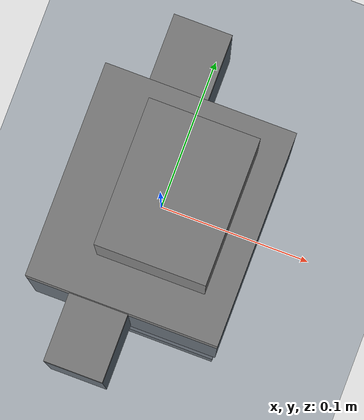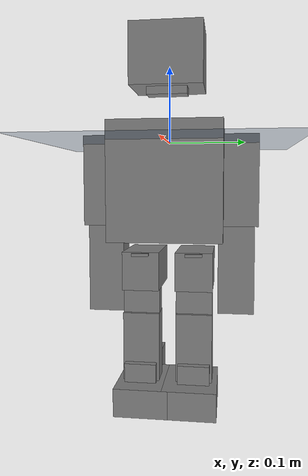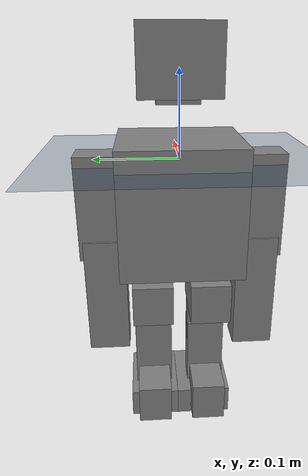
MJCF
<mujoco model="utra">
	<include file="bez1.xml" />
	<visual>
		<headlight diffuse="0.6 0.6 0.6" ambient="0.3 0.3 0.3" specular="0 0 0"/>
		<rgba haze="0.15 0.25 0.35 1"/>
		<global azimuth="160" elevation="-20"/>
	</visual>

	<asset>
		<texture type="skybox" builtin="gradient" rgb1="0.3 0.5 0.7" rgb2="0 0 0" width="512" height="3072"/>
		<texture type="2d" name="groundplane" builtin="checker" mark="edge" rgb1="0.2 0.3 0.4" rgb2="0.1 0.2 0.3"
			markrgb="0.8 0.8 0.8" width="300" height="300"/>
		<material name="groundplane" texture="groundplane" texuniform="true" texrepeat="5 5" reflectance="0.2"/>
	</asset>

	<worldbody>
		<light pos="0 0 3.5" dir="0 0 -1" directional="true"/>
		<geom name="floor" size="0 0 0.05" pos="0 0 0" type="plane" material="groundplane"/>

	</worldbody>
</mujoco>

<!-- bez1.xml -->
<mujoco model="bez1">
  <compiler angle="radian"/>
  <default>
        <default class="mx106">
            <position kp="21" forcerange="-8 8" />
            <joint damping="1.7" armature="0.025" frictionloss="0.10" />
        </default>
        <default class="mx64">
            <position kp="12.5" forcerange="-5 5" />
            <joint damping="0.66" armature="0.012" frictionloss="0.09" />
        </default>
		<default class="xm430">
            <position kp="21.1" ctrlrange="-3.141592 3.141592" forcerange="-5 5"/>
            <joint damping="1.084" armature="0.045" frictionloss="0.03"/>
        </default>

    <default class="mx28">
            <position kp="12.5" forcerange="-2.5 2.5" />
            <joint damping="0.30" armature="0.012" frictionloss="0.09" />
        </default>
    <default class="ax12">
            <position kp="12.5" forcerange="-10.5 10.5" />
            <joint damping="0.3" armature="0.012" frictionloss="0.09" />
        </default>
    </default>

  <worldbody>
    <body name="torso_2023">
      <freejoint name="root" />
      <site name="torso" />
      <site name="trunk" pos="-0.0 0 -0.12" />
      <inertial pos="0.0082498 -0.001744 -0.0522479" quat="0.708866 -0.0217531 -0.0152062 0.704844" mass="1.529" diaginertia="0.00519817 0.00432504 0.00356479"/>
      <geom name="collision" size="0.065 0.0725 0.076" pos="0 0 -0.052" type="box"/>
      <body name="left_bicep" pos="-0.0157 0.0725 0">
        <inertial pos="0 0.02579 -0.04955" quat="0.99973 0.0232243 0 0" mass="0.000213" diaginertia="0.0002824 0.000274942 2.37884e-05"/>
        <joint class="ax12" name="left_shoulder_pitch" pos="0 0 0" axis="0 -1 0" range="-1.5708 3.92699" />
        <geom name="left_bicep" size="0.02 0.02388 0.0615" pos="0 0.0225 -0.05001" type="box"/>
        <body name="left_forearm" pos="0 0 -0.1">
          <inertial pos="0 0.0245 -0.0546097" quat="0.999988 0 -0.00494983 0" mass="0.0457" diaginertia="0.00011301 0.000107 1.19901e-05"/>
          <joint class="ax12" name="left_elbow" pos="0 0 0" axis="0 1 0"  />
          <geom name="left_forearm" size="0.0175 0.0245 0.072" pos="-0.0055 0.0175 -0.06" type="box"/>
        </body>
      </body>
      <body name="right_bicep" pos="-0.0157 -0.0725 0">
        <inertial pos="0 -0.02579 -0.04955" quat="0.99973 -0.0232243 0 0" mass="0.000213" diaginertia="0.0002824 0.000274942 2.37884e-05"/>
        <joint class="ax12" name="right_shoulder_pitch" pos="0 0 0" axis="0 -1 0" range="-1.5708 3.92699" />
        <geom name="right_bicep" size="0.02 0.02388 0.0615" pos="0 -0.0225 -0.05001" type="box"/>
        <body name="right_forearm" pos="0 0 -0.1">
          <inertial pos="0 -0.0245 -0.0546097" quat="0.999988 0 0.00494983 0" mass="0.0457" diaginertia="0.00011301 0.000107 1.19901e-05"/>
          <joint class="ax12" name="right_elbow" pos="0 0 0" axis="0 1 0"  />
          <geom name="right_forearm" size="0.0175 0.0245 0.072" pos="-0.0055 -0.0175 -0.06" type="box"/>
        </body>
      </body>
      <body name="left_hip_side" pos="0.0135 0.035 -0.156">
        <inertial pos="0.0003695 0 0.01689" quat="0.5 0.5 0.5 0.5" mass="0.009364" diaginertia="5e-06 4e-06 2e-06"/>
        <joint class="mx28" name="left_hip_yaw" pos="0 0 0" axis="0 0 -1" range="-1.309 0.524" />
        <geom name="left_hip_side" size="0.02425 0.011 0.00195" pos="0 0 0.00899" type="box"/>
        <body name="left_hip_front">
          <inertial pos="-0.02093 0 -0.011313" quat="0.507623 0.492259 0.492259 0.507623" mass="0.153186" diaginertia="0.000118 0.000106061 4.09385e-05"/>
          <joint class="mx28" name="left_hip_roll" pos="0 0 0" axis="1 0 0" />
          <geom name="left_hip_front" size="0.0418735 0.024425 0.0253" pos="-0.02187 0 -0.01332" type="box"/>
          <body name="left_thigh">
            <inertial pos="0.0019422 0.0001419 -0.0469409" quat="0.994539 0 0 0.104366" mass="0.021438" diaginertia="2.54244e-05 1.55756e-05 1e-05"/>
            <joint class="mx28" name="left_hip_pitch" pos="0 0 0" axis="0 -1 0" range="-0.785398 2.35619" />
            <geom name="left_thigh" size="0.011 0.024 0.0555" pos="0 0 -0.0445" type="box"/>
            <body name="left_calve" pos="0 0 -0.089">
              <inertial pos="0 -3.259e-07 -1.50123e-05" quat="0.999829 -0.0184837 0 0" mass="0.086547" diaginertia="5.4e-05 4.6037e-05 1.8963e-05"/>
              <joint class="mx28" name="left_knee" pos="0 0 0" axis="0 -1 0" range="-2.793 0" />
              <geom name="left_calve" size="0.0159415 0.024 0.0528415" pos="0 0 -0.03385" type="box"/>
              <body name="left_ankle" pos="0 0 -0.0827">
                <inertial pos="-2.0939e-05 0 1.1313e-05" quat="0.492259 0.507623 0.507623 0.492259" mass="0.153186" diaginertia="0.000118 0.000106061 4.09385e-05"/>
                <joint class="mx28" name="left_ankle_pitch" pos="0 0 0" axis="0 -1 0" range="-0.785398 1.5708" />
                <geom name="left_ankle" size="0.0453845 0.021 0.0253" pos="-0.02014 0 0.01031" type="box"/>
                <body name="left_foot">
                  <inertial pos="-0.020939 0 0.011313" quat="0 0.707107 0 0.707107" mass="0.023216" diaginertia="2.2e-05 1.8e-05 6e-06"/>
                  <joint class="mx28" name="left_ankle_roll" pos="0 0 0" axis="1 0 0" range="-0.785398 0.785398" />
                  <geom name="left_foot" size="0.045 0.035 0.01837" pos="0.00385 -0.00401 -0.00737" type="box"/>
                  <site name="left_foot"  pos="0 0 -0.023"/>
                </body>
              </body>
            </body>
          </body>
        </body>
      </body>
      <body name="right_hip_side" pos="0.0135 -0.035 -0.156">
        <inertial pos="0.0003695 0 0.01689" quat="0.5 0.5 0.5 0.5" mass="0.009364" diaginertia="5e-06 4e-06 2e-06"/>
        <joint class="mx28" name="right_hip_yaw" pos="0 0 0" axis="0 0 1" range="-1.309 0.524" />
        <geom name="right_hip_side" size="0.02425 0.011 0.00195" pos="0 0 0.00899" type="box"/>
        <body name="right_hip_front">
          <inertial pos="-0.02093 0 -0.011313" quat="0.507623 0.492259 0.492259 0.507623" mass="0.153186" diaginertia="0.000118 0.000106061 4.09385e-05"/>
          <joint class="mx28" name="right_hip_roll" pos="0 0 0" axis="-1 0 0" range="-0.785398 1.5708" />
          <geom name="right_hip_front" size="0.0418735 0.024425 0.0253" pos="-0.02187 0 -0.01332" type="box"/>
          <body name="right_thigh">
            <inertial pos="0.0019422 -0.0001419 -0.0469409" quat="0.994539 0 0 -0.104366" mass="0.021438" diaginertia="2.54244e-05 1.55756e-05 1e-05"/>
            <joint class="mx28" name="right_hip_pitch" pos="0 0 0" axis="0 -1 0" range="-0.785398 2.35619" />
            <geom name="right_thigh" size="0.011 0.024 0.0555" pos="0 0 -0.0445" type="box"/>
            <body name="right_calve" pos="0 0 -0.089">
              <inertial pos="0 3.259e-07 -1.50123e-05" quat="0.999829 -0.0184837 0 0" mass="0.086547" diaginertia="5.4e-05 4.6037e-05 1.8963e-05"/>
              <joint class="mx28" name="right_knee" pos="0 0 0" axis="0 -1 0" range="-2.793 0" />
              <geom name="right_calve" size="0.0159415 0.024 0.0528415" pos="0 0 -0.03385" type="box"/>
              <body name="right_ankle" pos="0 0 -0.0827">
                <inertial pos="-2.0939e-05 0 1.1313e-05" quat="0.492259 0.507623 0.507623 0.492259" mass="0.153186" diaginertia="0.000118 0.000106061 4.09385e-05"/>
                <joint class="mx28" name="right_ankle_pitch" pos="0 0 0" axis="0 -1 0" range="-0.785398 1.5708" />
                <geom name="right_ankle" size="0.0453845 0.021 0.0253" pos="-0.02014 0 0.01031" type="box"/>
                <body name="right_foot">
                  <inertial pos="-0.020939 0 0.011313" quat="0 0.707107 0 0.707107" mass="0.023216" diaginertia="2.2e-05 1.8e-05 6e-06"/>
                  <joint class="mx28" name="right_ankle_roll" pos="0 0 0" axis="-1 0 0" range="-0.785398 0.785398" />
                  <geom name="right_foot" size="0.045 0.035 0.01837" pos="0.00385 0.00401 -0.00737" type="box"/>
                  <site name="right_foot" pos="0 0 -0.023" />
                </body>
              </body>
            </body>
          </body>
        </body>
      </body>
      <body name="head_base" pos="0.024 0 0.05875">
        <inertial pos="0 -0.0006476 0.0092453" quat="0.707107 0.707107 0 0" mass="0.011294" diaginertia="5.489e-06 4.955e-06 1.433e-06"/>
        <joint class="ax12" name="head_yaw" pos="0 0 0" axis="0 0 1" range="-1.5708 1.5708" />
        <geom name="head_base" size="0.011 0.02615 0.0165" pos="0 0 0.0165" type="box"/>
        <body name="head" pos="0 0 0.024">
          <inertial pos="0.0237166 0.0018096 0.0255966" quat="0.955817 0.0132124 0.293447 -0.0113402" mass="0.282" diaginertia="0.000244846 0.000205778 0.000121376"/>
          <joint class="ax12" name="head_pitch" pos="0 0 0" axis="0 1 0" range="-2.35619 2.35619" />
          <geom name="head" size="0.0356 0.047 0.03895" pos="-0.013 0 0.025" type="box"/>
          <body name="camera" pos="0.015 0.00145 0.0474">
            <inertial pos="0 0 0" mass="0.01" diaginertia="1e-09 1e-09 1e-09"/>
             <site name="camera" pos="0 0 0" />
          </body>
        </body>
      </body>
    </body>
  </worldbody>
  <sensor>
        <gyro site="torso" name="gyro" />
        <accelerometer site="torso" name="accelerometer" />
    </sensor>
  <actuator>
        <position class="mx28" name="left_hip_roll" joint="left_hip_roll" ctrlrange="-0.785398 1.5708" />
        <position class="mx28" name="left_hip_pitch" joint="left_hip_pitch" ctrlrange="-2.35619 0.785398" />
        <position class="mx28" name="left_knee" joint="left_knee" ctrlrange=" 0 2.793" />
        <position class="mx28" name="left_ankle_pitch" joint="left_ankle_pitch" ctrlrange="-1.5708 0.785398" />
        <position class="mx28" name="left_ankle_roll" joint="left_ankle_roll" ctrlrange="-0.785398 0.785398" />
        <position class="mx28" name="right_hip_roll" joint="right_hip_roll" ctrlrange="-0.785398 1.5708" />
        <position class="mx28" name="right_hip_pitch" joint="right_hip_pitch" ctrlrange="-2.35619 0.785398" />
        <position class="mx28" name="right_knee" joint="right_knee" ctrlrange=" 0 2.793" />
        <position class="mx28" name="right_ankle_pitch" joint="right_ankle_pitch" ctrlrange="-1.5708 0.785398" />
        <position class="mx28" name="right_ankle_roll" joint="right_ankle_roll" ctrlrange="-0.785398 0.785398" />

        <position class="ax12" name="head_yaw" joint="head_yaw" ctrlrange="-1.5708 1.5708" />
        <position class="ax12" name="head_pitch" joint="head_pitch" ctrlrange="0 1.5708" />
        <position class="mx28" name="left_hip_yaw" joint="left_hip_yaw" ctrlrange="-1.309 0.524" />
        <position class="mx28" name="right_hip_yaw" joint="right_hip_yaw" ctrlrange="-1.309 0.524" />
        <position class="ax12" name="left_shoulder_pitch" joint="left_shoulder_pitch" ctrlrange="-3.92699 3.14159" />
        <position class="ax12" name="left_elbow" joint="left_elbow" ctrlrange="-3.14159 0" />
        <position class="ax12" name="right_shoulder_pitch" joint="right_shoulder_pitch" ctrlrange=" -3.92699 3.14159" />
        <position class="ax12" name="right_elbow" joint="right_elbow" ctrlrange="-3.14159 0" />

   </actuator>
</mujoco>
